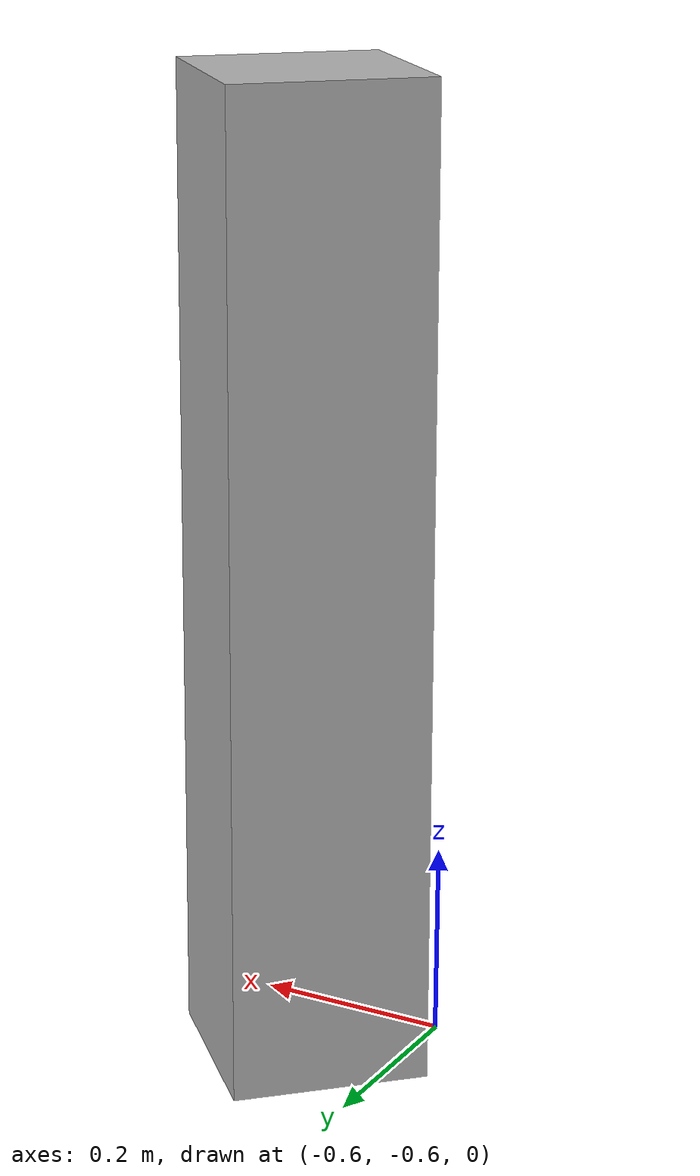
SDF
<sdf version='1.12'>
  <model name='square_1'>
    <plugin filename="gz-sim-touchplugin-system"            name="gz::sim::systems::TouchPlugin">        <target>turtlebot3_burger</target>        <namespace>obstacle</namespace>        <time>0.001</time>        <enabled>true</enabled>    </plugin>    <pose>-0.5 -0.5 0.5 0.0 0.0 0.78</pose>
    <link name='box_link'>
      <sensor name='sensor_contact' type='contact'>          <contact>              <collision>box_collision</collision>          </contact>      </sensor>      <inertial>
        <inertia>
          <ixx>10.4</ixx>
          <ixy>0</ixy>
          <ixz>0</ixz>
          <iyy>10.4</iyy>
          <iyz>0</iyz>
          <izz>0.8000000000000002</izz>
        </inertia>
        <mass>120</mass>
        <pose>0 0 0 0 0 0</pose>
      </inertial>
      <collision name='box_collision'>
        <geometry>
          <box>
            <size>0.2 0.2 1.0</size>
          </box>
        </geometry>
        <surface>
          <friction>
            <ode/>
          </friction>
          <bounce/>
          <contact/>
        </surface>
      </collision>
      <visual name='box_visual'>
        <geometry>
          <box>
            <size>0.2 0.2 1.0</size>
          </box>
        </geometry>
        <material>
          <ambient>0.300000012 0.300000012 0.300000012 1</ambient>
          <diffuse>0.699999988 0.699999988 0.699999988 1</diffuse>
          <specular>1 1 1 1</specular>
        </material>
      </visual>
      <pose>0 0 0 0 0 0</pose>
      <enable_wind>false</enable_wind>
    </link>
    <static>false</static>
    <self_collide>false</self_collide>
  </model>
</sdf>
